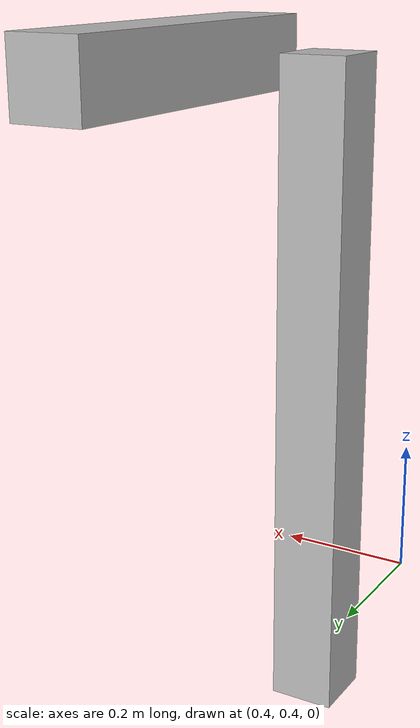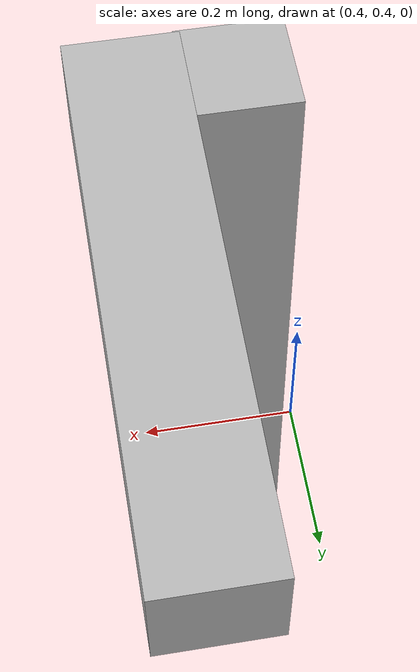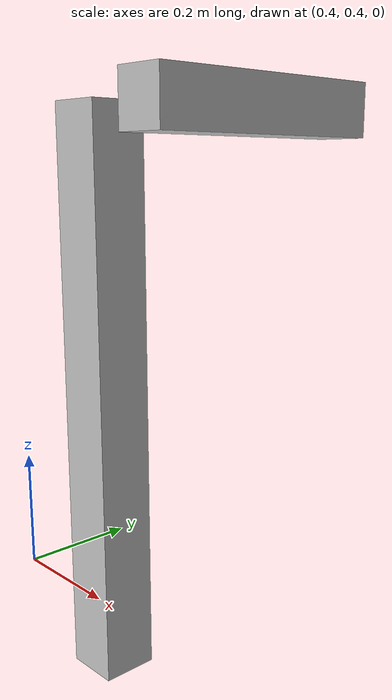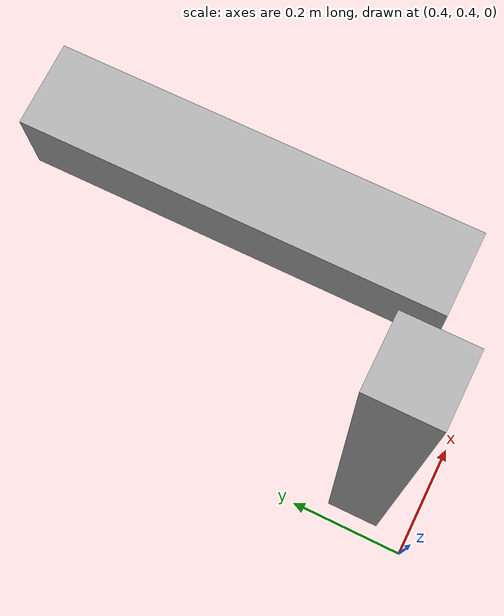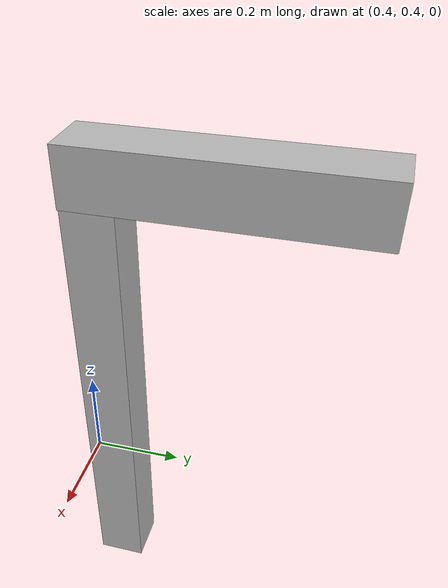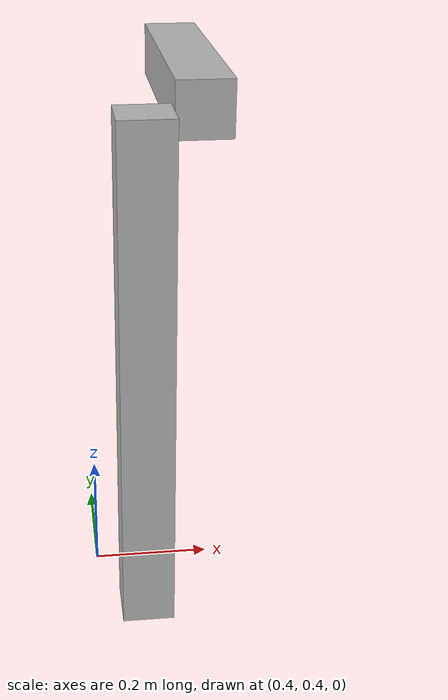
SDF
<?xml version='1.0'?>
<sdf version="1.7" >
    <model name='pendulm'>
        <pose>0.5 0.5 0 0 0 0</pose>
        <joint name="base2world" type="fixed">
            <pose>0 0 0 0 0 0</pose>
            <parent>world</parent>
            <child>base</child>
        </joint>
        <frame name="base_frame" attached_to="base">
            <pose>0 0 -0.2 0 0 0</pose>
          </frame>
        <link name="base">
            <pose>0 0 0.3 0 0 0</pose>
            <visual name="base_visual">
                <geometry>
                    <box>
                        <size>0.1 0.1 1</size>
                    </box>
                </geometry>
            </visual>
        </link>
        <link name="pendulum">
            <pose relative_to="joint">
                0.05 0 -0.25 0 0 0
            </pose>
            <visual name="pendulum_visual">
                <geometry>
                    <box>
                        <size>0.1 0.1 0.5</size>
                    </box>
                </geometry>
            </visual>
        </link>
        <joint name="joint" type="revolute">
            <parent>base</parent>
            <child>pendulum</child>
            <pose relative_to="base_frame">
                0.05 0 0.70 1.57 0 0
            </pose>
            <axis>
                <xyz>1 0 0</xyz>
            </axis>
        </joint>
    </model>
</sdf>
